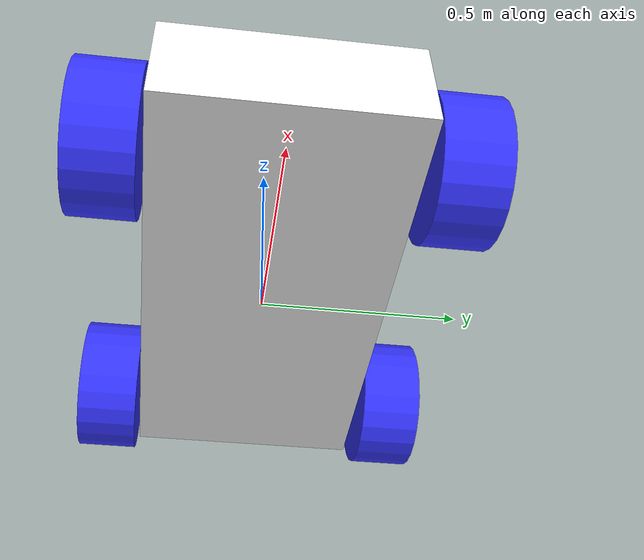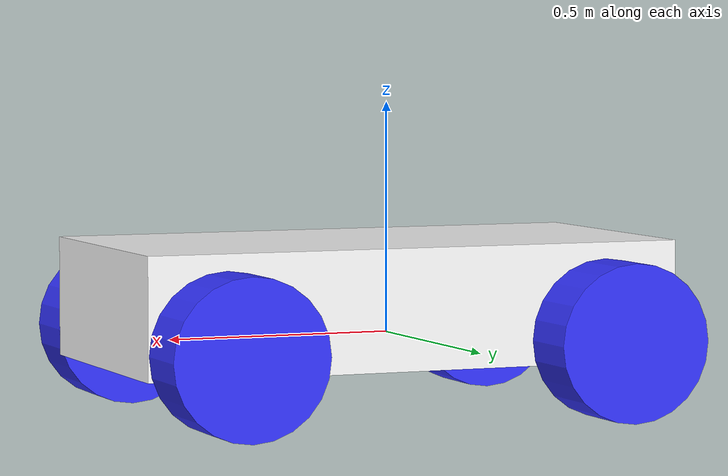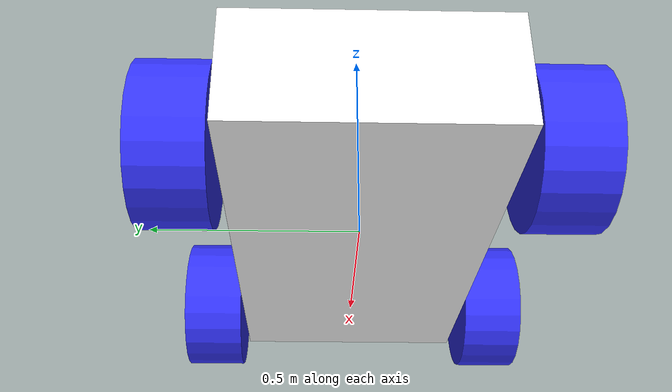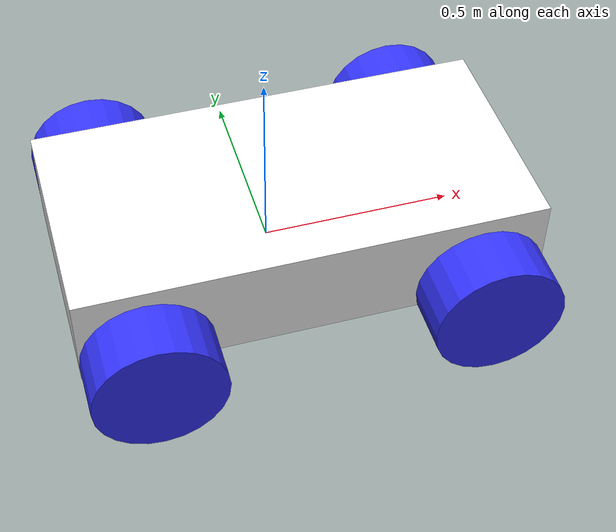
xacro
<?xml version="1.0"?>
<robot xmlns:xacro="http://www.ros.org/wiki/xacro"  name="robot">

    <xacro:include filename="robot_core.xacro" />

    <xacro:include filename="gazebo_control.xacro" />

<!-- Camera -->
<link name="camera_link">
  <visual>
    <geometry>
      <box size="0.05 0.05 0.05"/>
    </geometry>
  </visual>
  <collision>
    <geometry>
      <box size="0.05 0.05 0.05"/>
    </geometry>
  </collision>
  <inertial>
    <mass value="0.1"/>
    <inertia ixx="0.001" ixy="0.0" ixz="0.0" iyy="0.001" iyz="0.0" izz="0.001"/>
  </inertial>
</link>

<joint name="camera_joint" type="fixed">
  <parent link="base_link"/>
  <child link="camera_link"/>
  <origin xyz="0.2 0 0.1" rpy="0 0 0"/>
</joint>

<!-- Gazebo camera plugin -->
<gazebo reference="camera_link">
  <sensor type="camera" name="camera">
    <update_rate>30.0</update_rate>
    <camera name="main">
      <horizontal_fov>1.047</horizontal_fov>
      <image>
        <width>640</width>
        <height>480</height>
        <format>R8G8B8</format>
      </image>
      <clip>
        <near>0.05</near>
        <far>100.0</far>
      </clip>
    </camera>
    <plugin filename="libgazebo_ros_camera.so" name="camera_controller">
      <ros>
        <namespace>camera</namespace>
      </ros>
      <camera_name>camera</camera_name>
      <frame_name>camera_link</frame_name>
      <hack_baseline>0.07</hack_baseline>
    </plugin>
  </sensor>
</gazebo>
</robot>

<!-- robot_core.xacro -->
<robot xmlns:xacro="http://www.ros.org/wiki/xacro">

<xacro:include filename="inertia_macros.xacro"/>
    <material name="white">
        <color rgba="1 1 1 1"/>
    </material>

    <material name="orange">
        <color rgba="1 0.3 0.1 1"/>
    </material>

    <material name="blue">
        <color rgba="0.2 0.2 1 1"/>
    </material>

    <material name="black">
        <color rgba="0 0 0 1"/>
    </material>

    <link name="base_link">

    </link>

    <joint name="chassis_joint" type="fixed">
        <parent link="base_link"/>
        <child link="chassis"/>
        <origin xyz="-0.1 0 0"/>
    </joint>

    <link name="chassis">
        <visual>
            <origin xyz="0.15 0 0.075" rpy="0 0 0"/>
            <geometry>
                <box size="1.2 0.6 0.26"/>
            </geometry>
            <material name="white"/>
        </visual>
        <collision>
            <origin xyz="0.15 0 0.075" rpy="0 0 0"/>
            <geometry>
                <box size="1.2 0.6 0.26"/>
            </geometry>
        </collision>
        <xacro:inertial_box mass="0.5" x="1.2" y="0.6" z="0.26">
            <origin xyz="0.15 0 0.075" rpy="0 0 0"/>
        </xacro:inertial_box>
    </link>

    <gazebo reference="chassis">
        <material>Gazebo/White</material>
    </gazebo>

    <!-- LEFT WHEEL -->

    <joint name="left_wheel_joint" type="continuous">
        <parent link="base_link"/>
        <child link="left_wheel"/>
        <origin xyz="-0.38 0.38 0" rpy="-${pi/2} 0 0"/>
        <axis xyz="0 0 1"/>
    </joint>

    <link name="left_wheel">
        <visual>
            <geometry>
                <cylinder length="0.15" radius="0.17"/>
            </geometry>
            <material name="blue"/>
        </visual>
        <collision>
            <geometry>
                <cylinder radius="0.17" length="0.15"/>
            </geometry>
        </collision>
        <xacro:inertial_cylinder mass="0.1" length="0.15" radius="0.17">
            <origin xyz="0 0 0" rpy="0 0 0"/>
        </xacro:inertial_cylinder>
    </link>

    <gazebo reference="left_wheel">
        <material>Gazebo/Blue</material>
        <mu1 value="10.0"/>
        <mu2 value="10.0"/>
        <kp value="10000000.0" />
        <kd value="1.0" />
    </gazebo>

    <!-- RIGHT WHEEL -->

    <joint name="right_wheel_joint" type="continuous">
        <parent link="base_link"/>
        <child link="right_wheel"/>
        <origin xyz="-0.38 -0.38 0" rpy="${pi/2} 0 0"/>
        <axis xyz="0 0 -1"/>
    </joint>

    <link name="right_wheel">
        <visual>
            <geometry>
                <cylinder length="0.15" radius="0.17"/>
            </geometry>
            <material name="blue"/>
        </visual>
        <collision>
            <geometry>
                <cylinder radius="0.17" length="0.15"/>
            </geometry>
        </collision>
        <xacro:inertial_cylinder mass="0.1" length="0.15" radius="0.17">
            <origin xyz="0 0 0" rpy="0 0 0"/>
        </xacro:inertial_cylinder>
    </link>

    <gazebo reference="right_wheel">
        <material>Gazebo/Blue</material>
        <mu1 value="10.0"/>
        <mu2 value="10.0"/>
        <kp value="10000000.0" />
        <kd value="1.0" />
    </gazebo>

    <!-- BACK LEFT WHEEL -->

    <joint name="back_left_wheel_joint" type="continuous">
        <parent link="base_link"/>
        <child link="back_left_wheel"/>
        <origin xyz="0.48 0.38 0" rpy="-${pi/2} 0 0"/>
        <axis xyz="0 0 1"/>
    </joint>

    <link name="back_left_wheel">
        <visual>
            <geometry>
                <cylinder length="0.15" radius="0.17"/>
            </geometry>
            <material name="blue"/>
        </visual>
        <collision>
            <geometry>
                <cylinder radius="0.17" length="0.15"/>
            </geometry>
        </collision>
        <xacro:inertial_cylinder mass="0.1" length="0.15" radius="0.17">
            <origin xyz="0 0 0" rpy="0 0 0"/>
        </xacro:inertial_cylinder>
    </link>

    <gazebo reference="back_left_wheel">
        <material>Gazebo/Blue</material>
        <mu1 value="10.0"/>
        <mu2 value="10.0"/>
        <kp value="10000000.0" />
        <kd value="1.0" />
    </gazebo>

    <!-- BACK RIGHT WHEEL -->

    <joint name="back_right_wheel_joint" type="continuous">
        <parent link="base_link"/>
        <child link="back_right_wheel"/>
        <origin xyz="0.48 -0.38 0" rpy="${pi/2} 0 0"/>
        <axis xyz="0 0 -1"/>
    </joint>

    <link name="back_right_wheel">
        <visual>
            <geometry>
                <cylinder length="0.15" radius="0.17"/>
            </geometry>
            <material name="blue"/>
        </visual>
        <collision>
            <geometry>
                <cylinder radius="0.17" length="0.15"/>
            </geometry>
        </collision>
        <xacro:inertial_cylinder mass="0.1" length="0.15" radius="0.17">
            <origin xyz="0 0 0" rpy="0 0 0"/>
        </xacro:inertial_cylinder>
    </link>

    <gazebo reference="back_right_wheel">
        <material>Gazebo/Blue</material>
        <mu1 value="10.0"/>
        <mu2 value="10.0"/>
        <kp value="10000000.0" />
        <kd value="1.0" />
    </gazebo>

</robot>
